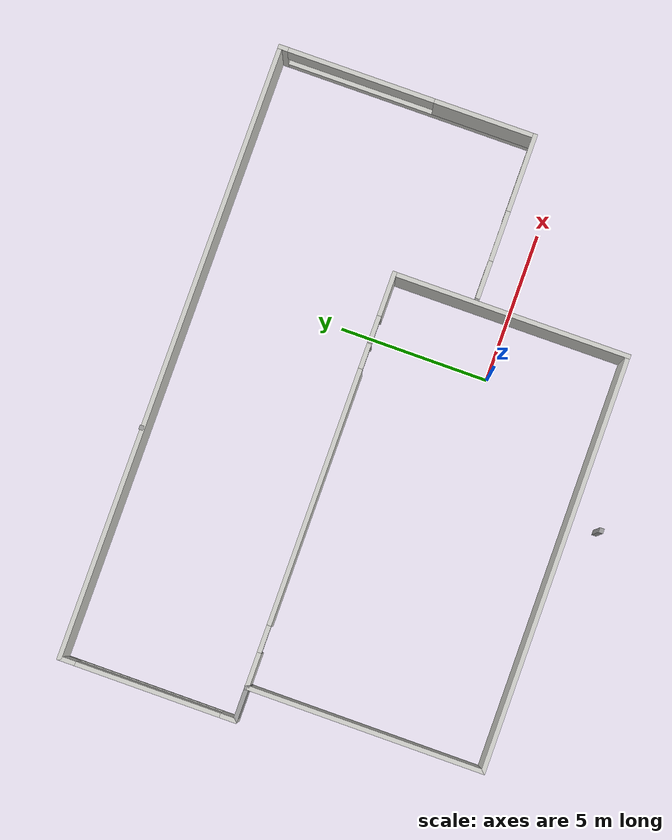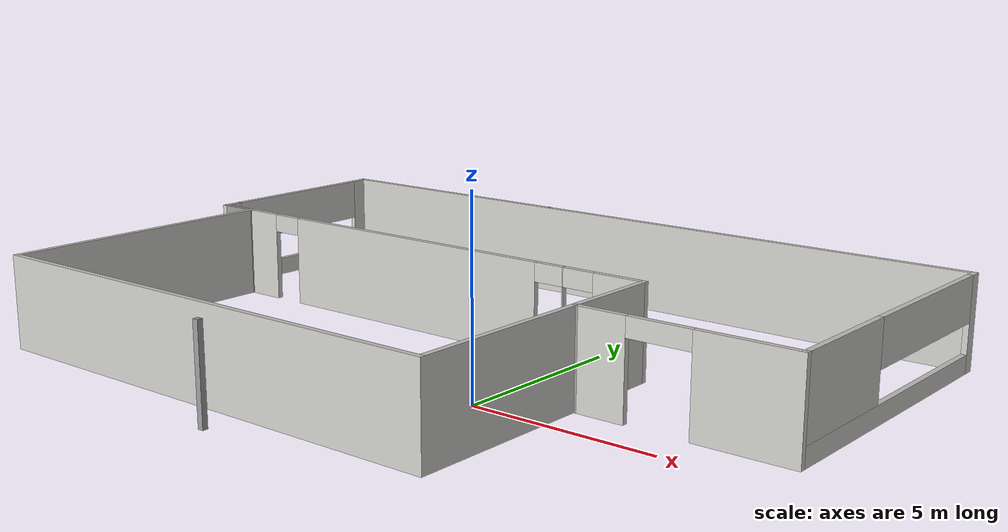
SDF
<?xml version='1.0'?>
<sdf version='1.7'>
  <model name='ZHAW_TB_UG1'>
    <pose>-2.6681 2.44183 0 0 -0 0</pose>
    <link name='Wall_11'>
      <pose>-2.275 1.49005 0 0 -0 0</pose>
      <visual name='Wall_11_Visual_0'>
        <pose>-6.38525 0 1.25 0 -0 0</pose>
        <geometry>
          <box>
            <size>1.2295 0.15 2.5</size>
          </box>
        </geometry>
        <material>
          <script>
            <uri>file://media/materials/scripts/gazebo.material</uri>
            <name>Gazebo/CeilingTiled</name>
          </script>
          <ambient>1 1 1 1</ambient>
        </material>
        <meta>
          <layer>0</layer>
        </meta>
      </visual>
      <collision name='Wall_11_Collision_0'>
        <geometry>
          <box>
            <size>1.2295 0.15 2.5</size>
          </box>
        </geometry>
        <pose>-6.38525 0 1.25 0 -0 0</pose>
      </collision>
      <visual name='Wall_11_Visual_1'>
        <pose>-0.575502 0 1.25 0 -0 0</pose>
        <geometry>
          <box>
            <size>8.59 0.15 2.5</size>
          </box>
        </geometry>
        <material>
          <script>
            <uri>file://media/materials/scripts/gazebo.material</uri>
            <name>Gazebo/CeilingTiled</name>
          </script>
          <ambient>1 1 1 1</ambient>
        </material>
        <meta>
          <layer>0</layer>
        </meta>
      </visual>
      <collision name='Wall_11_Collision_1'>
        <geometry>
          <box>
            <size>8.59 0.15 2.5</size>
          </box>
        </geometry>
        <pose>-0.575502 0 1.25 0 -0 0</pose>
      </collision>
      <visual name='Wall_11_Visual_2'>
        <pose>4.5845 0 1.25 0 -0 0</pose>
        <geometry>
          <box>
            <size>0.03 0.15 2.5</size>
          </box>
        </geometry>
        <material>
          <script>
            <uri>file://media/materials/scripts/gazebo.material</uri>
            <name>Gazebo/CeilingTiled</name>
          </script>
          <ambient>1 1 1 1</ambient>
        </material>
        <meta>
          <layer>0</layer>
        </meta>
      </visual>
      <collision name='Wall_11_Collision_2'>
        <geometry>
          <box>
            <size>0.03 0.15 2.5</size>
          </box>
        </geometry>
        <pose>4.5845 0 1.25 0 -0 0</pose>
      </collision>
      <visual name='Wall_11_Visual_3'>
        <pose>6.24975 0 1.25 0 -0 0</pose>
        <geometry>
          <box>
            <size>1.5005 0.15 2.5</size>
          </box>
        </geometry>
        <material>
          <script>
            <uri>file://media/materials/scripts/gazebo.material</uri>
            <name>Gazebo/CeilingTiled</name>
          </script>
          <ambient>1 1 1 1</ambient>
        </material>
        <meta>
          <layer>0</layer>
        </meta>
      </visual>
      <collision name='Wall_11_Collision_3'>
        <geometry>
          <box>
            <size>1.5005 0.15 2.5</size>
          </box>
        </geometry>
        <pose>6.24975 0 1.25 0 -0 0</pose>
      </collision>
      <visual name='Wall_11_Visual_4'>
        <pose>-5.3205 0 2.25 0 -0 0</pose>
        <geometry>
          <box>
            <size>0.9 0.15 0.5</size>
          </box>
        </geometry>
        <material>
          <script>
            <uri>file://media/materials/scripts/gazebo.material</uri>
            <name>Gazebo/CeilingTiled</name>
          </script>
          <ambient>1 1 1 1</ambient>
        </material>
        <meta>
          <layer>0</layer>
        </meta>
      </visual>
      <collision name='Wall_11_Collision_4'>
        <geometry>
          <box>
            <size>0.9 0.15 0.5</size>
          </box>
        </geometry>
        <pose>-5.3205 0 2.25 0 -0 0</pose>
      </collision>
      <visual name='Wall_11_Visual_5'>
        <pose>4.1445 0 2.25 0 -0 0</pose>
        <geometry>
          <box>
            <size>0.85 0.15 0.5</size>
          </box>
        </geometry>
        <material>
          <script>
            <uri>file://media/materials/scripts/gazebo.material</uri>
            <name>Gazebo/CeilingTiled</name>
          </script>
          <ambient>1 1 1 1</ambient>
        </material>
        <meta>
          <layer>0</layer>
        </meta>
      </visual>
      <collision name='Wall_11_Collision_5'>
        <geometry>
          <box>
            <size>0.85 0.15 0.5</size>
          </box>
        </geometry>
        <pose>4.1445 0 2.25 0 -0 0</pose>
      </collision>
      <visual name='Wall_11_Visual_6'>
        <pose>5.0495 0 2.25 0 -0 0</pose>
        <geometry>
          <box>
            <size>0.9 0.15 0.5</size>
          </box>
        </geometry>
        <material>
          <script>
            <uri>file://media/materials/scripts/gazebo.material</uri>
            <name>Gazebo/CeilingTiled</name>
          </script>
          <ambient>1 1 1 1</ambient>
        </material>
        <meta>
          <layer>0</layer>
        </meta>
      </visual>
      <collision name='Wall_11_Collision_6'>
        <geometry>
          <box>
            <size>0.9 0.15 0.5</size>
          </box>
        </geometry>
        <pose>5.0495 0 2.25 0 -0 0</pose>
      </collision>
    </link>
    <link name='Wall_13'>
      <collision name='Wall_13_Collision'>
        <geometry>
          <box>
            <size>0.194772 0.15 2.5</size>
          </box>
        </geometry>
        <pose>0 0 1.25 0 -0 0</pose>
      </collision>
      <visual name='Wall_13_Visual'>
        <pose>0 0 1.25 0 -0 0</pose>
        <geometry>
          <box>
            <size>0.194772 0.15 2.5</size>
          </box>
        </geometry>
        <material>
          <script>
            <uri>file://media/materials/scripts/gazebo.material</uri>
            <name>Gazebo/Grey</name>
          </script>
          <ambient>1 1 1 1</ambient>
        </material>
        <meta>
          <layer>0</layer>
        </meta>
      </visual>
      <pose>-9.1958 1.46806 0 0 -0 -1.38206</pose>
    </link>
    <link name='Wall_17'>
      <collision name='Wall_17_Collision'>
        <geometry>
          <box>
            <size>1.25 0.15 2.5</size>
          </box>
        </geometry>
        <pose>0 0 1.25 0 -0 0</pose>
      </collision>
      <visual name='Wall_17_Visual'>
        <pose>0 0 1.25 0 -0 0</pose>
        <geometry>
          <box>
            <size>1.25 0.15 2.5</size>
          </box>
        </geometry>
        <material>
          <script>
            <uri>file://media/materials/scripts/gazebo.material</uri>
            <name>Gazebo/Grey</name>
          </script>
          <ambient>1 1 1 1</ambient>
        </material>
        <meta>
          <layer>0</layer>
        </meta>
      </visual>
      <pose>-9.75 1.49005 0 0 -0 3.14159</pose>
    </link>
    <link name='Wall_18'>
      <pose>-10.3 4.41505 0 0 -0 1.5708</pose>
      <visual name='Wall_18_Visual_0'>
        <pose>-2.70968 0 1.25 0 -0 0</pose>
        <geometry>
          <box>
            <size>0.580639 0.15 2.5</size>
          </box>
        </geometry>
        <material>
          <script>
            <uri>file://media/materials/scripts/gazebo.material</uri>
            <name>Gazebo/CeilingTiled</name>
          </script>
          <ambient>1 1 1 1</ambient>
        </material>
        <meta>
          <layer>0</layer>
        </meta>
      </visual>
      <collision name='Wall_18_Collision_0'>
        <geometry>
          <box>
            <size>0.580639 0.15 2.5</size>
          </box>
        </geometry>
        <pose>-2.70968 0 1.25 0 -0 0</pose>
      </collision>
      <visual name='Wall_18_Visual_1'>
        <pose>0.290319 0 0.25 0 -0 0</pose>
        <geometry>
          <box>
            <size>5.41936 0.15 0.5</size>
          </box>
        </geometry>
        <material>
          <script>
            <uri>file://media/materials/scripts/gazebo.material</uri>
            <name>Gazebo/CeilingTiled</name>
          </script>
          <ambient>1 1 1 1</ambient>
        </material>
        <meta>
          <layer>0</layer>
        </meta>
      </visual>
      <collision name='Wall_18_Collision_1'>
        <geometry>
          <box>
            <size>5.41936 0.15 0.5</size>
          </box>
        </geometry>
        <pose>0.290319 0 0.25 0 -0 0</pose>
      </collision>
      <visual name='Wall_18_Visual_2'>
        <pose>2.70268 0 1.5 0 -0 0</pose>
        <geometry>
          <box>
            <size>0.594636 0.15 2</size>
          </box>
        </geometry>
        <material>
          <script>
            <uri>file://media/materials/scripts/gazebo.material</uri>
            <name>Gazebo/CeilingTiled</name>
          </script>
          <ambient>1 1 1 1</ambient>
        </material>
        <meta>
          <layer>0</layer>
        </meta>
      </visual>
      <collision name='Wall_18_Collision_2'>
        <geometry>
          <box>
            <size>0.594636 0.15 2</size>
          </box>
        </geometry>
        <pose>2.70268 0 1.5 0 -0 0</pose>
      </collision>
      <visual name='Wall_18_Visual_3'>
        <pose>-0.006999 0 1.9 0 -0 0</pose>
        <geometry>
          <box>
            <size>4.82473 0.15 1.2</size>
          </box>
        </geometry>
        <material>
          <script>
            <uri>file://media/materials/scripts/gazebo.material</uri>
            <name>Gazebo/CeilingTiled</name>
          </script>
          <ambient>1 1 1 1</ambient>
        </material>
        <meta>
          <layer>0</layer>
        </meta>
      </visual>
      <collision name='Wall_18_Collision_3'>
        <geometry>
          <box>
            <size>4.82473 0.15 1.2</size>
          </box>
        </geometry>
        <pose>-0.006999 0 1.9 0 -0 0</pose>
      </collision>
    </link>
    <link name='Wall_2'>
      <collision name='Wall_2_Collision'>
        <geometry>
          <box>
            <size>0.16 0.15 2.5</size>
          </box>
        </geometry>
        <pose>0 0 1.25 0 -0 0</pose>
      </collision>
      <visual name='Wall_2_Visual'>
        <pose>0 0 1.25 0 -0 0</pose>
        <geometry>
          <box>
            <size>0.16 0.15 2.5</size>
          </box>
        </geometry>
        <material>
          <script>
            <uri>file://media/materials/scripts/gazebo.material</uri>
            <name>Gazebo/Grey</name>
          </script>
          <ambient>0 0 0 1</ambient>
        </material>
        <meta>
          <layer>0</layer>
        </meta>
      </visual>
      <pose>-0.839865 -7.37085 0 0 -0 0</pose>
    </link>
    <link name='Wall_25'>
      <collision name='Wall_25_Collision'>
        <geometry>
          <box>
            <size>0.15 0.15 2.5</size>
          </box>
        </geometry>
        <pose>0 0 1.25 0 -0 0</pose>
      </collision>
      <visual name='Wall_25_Visual'>
        <pose>0 0 1.25 0 -0 0</pose>
        <geometry>
          <box>
            <size>0.15 0.15 2.5</size>
          </box>
        </geometry>
        <material>
          <script>
            <uri>file://media/materials/scripts/gazebo.material</uri>
            <name>Gazebo/Grey</name>
          </script>
          <ambient>1 1 1 1</ambient>
        </material>
        <meta>
          <layer>0</layer>
        </meta>
      </visual>
      <pose>-2.62777 7.37085 0 0 -0 0</pose>
    </link>
    <link name='Wall_27'>
      <collision name='Wall_27_Collision'>
        <geometry>
          <box>
            <size>20.75 0.15 2.5</size>
          </box>
        </geometry>
        <pose>0 0 1.25 0 -0 0</pose>
      </collision>
      <visual name='Wall_27_Visual'>
        <pose>0 0 1.25 0 -0 0</pose>
        <geometry>
          <box>
            <size>20.75 0.15 2.5</size>
          </box>
        </geometry>
        <material>
          <script>
            <uri>file://media/materials/scripts/gazebo.material</uri>
            <name>Gazebo/CeilingTiled</name>
          </script>
          <ambient>1 1 1 1</ambient>
        </material>
        <meta>
          <layer>0</layer>
        </meta>
      </visual>
      <pose>0 7.34004 0 0 -0 0</pose>
    </link>
    <link name='Wall_28'>
      <pose>10.3 3.04005 0 0 -0 -1.5708</pose>
      <visual name='Wall_28_Visual_0'>
        <pose>-4.2049 0 1.25 0 -0 0</pose>
        <geometry>
          <box>
            <size>0.340199 0.15 2.5</size>
          </box>
        </geometry>
        <material>
          <script>
            <uri>file://media/materials/scripts/gazebo.material</uri>
            <name>Gazebo/CeilingTiled</name>
          </script>
          <ambient>1 1 1 1</ambient>
        </material>
        <meta>
          <layer>0</layer>
        </meta>
      </visual>
      <collision name='Wall_28_Collision_0'>
        <geometry>
          <box>
            <size>0.340199 0.15 2.5</size>
          </box>
        </geometry>
        <pose>-4.2049 0 1.25 0 -0 0</pose>
      </collision>
      <visual name='Wall_28_Visual_1'>
        <pose>0.1701 0 0.25 0 -0 0</pose>
        <geometry>
          <box>
            <size>8.4098 0.15 0.5</size>
          </box>
        </geometry>
        <material>
          <script>
            <uri>file://media/materials/scripts/gazebo.material</uri>
            <name>Gazebo/CeilingTiled</name>
          </script>
          <ambient>1 1 1 1</ambient>
        </material>
        <meta>
          <layer>0</layer>
        </meta>
      </visual>
      <collision name='Wall_28_Collision_1'>
        <geometry>
          <box>
            <size>8.4098 0.15 0.5</size>
          </box>
        </geometry>
        <pose>0.1701 0 0.25 0 -0 0</pose>
      </collision>
      <visual name='Wall_28_Visual_2'>
        <pose>2.64029 0 1.5 0 -0 0</pose>
        <geometry>
          <box>
            <size>3.46942 0.15 2</size>
          </box>
        </geometry>
        <material>
          <script>
            <uri>file://media/materials/scripts/gazebo.material</uri>
            <name>Gazebo/CeilingTiled</name>
          </script>
          <ambient>1 1 1 1</ambient>
        </material>
        <meta>
          <layer>0</layer>
        </meta>
      </visual>
      <collision name='Wall_28_Collision_2'>
        <geometry>
          <box>
            <size>3.46942 0.15 2</size>
          </box>
        </geometry>
        <pose>2.64029 0 1.5 0 -0 0</pose>
      </collision>
      <visual name='Wall_28_Visual_3'>
        <pose>-1.56461 0 1.9 0 -0 0</pose>
        <geometry>
          <box>
            <size>4.94038 0.15 1.2</size>
          </box>
        </geometry>
        <material>
          <script>
            <uri>file://media/materials/scripts/gazebo.material</uri>
            <name>Gazebo/CeilingTiled</name>
          </script>
          <ambient>1 1 1 1</ambient>
        </material>
        <meta>
          <layer>0</layer>
        </meta>
      </visual>
      <collision name='Wall_28_Collision_3'>
        <geometry>
          <box>
            <size>4.94038 0.15 1.2</size>
          </box>
        </geometry>
        <pose>-1.56461 0 1.9 0 -0 0</pose>
      </collision>
    </link>
    <link name='Wall_29'>
      <pose>7.5 -1.25995 0 0 -0 3.14159</pose>
      <visual name='Wall_29_Visual_0'>
        <pose>-1.55862 0 1.25 0 -0 0</pose>
        <geometry>
          <box>
            <size>2.63276 0.15 2.5</size>
          </box>
        </geometry>
        <material>
          <script>
            <uri>file://media/materials/scripts/gazebo.material</uri>
            <name>Gazebo/CeilingTiled</name>
          </script>
          <ambient>1 1 1 1</ambient>
        </material>
        <meta>
          <layer>0</layer>
        </meta>
      </visual>
      <collision name='Wall_29_Collision_0'>
        <geometry>
          <box>
            <size>2.63276 0.15 2.5</size>
          </box>
        </geometry>
        <pose>-1.55862 0 1.25 0 -0 0</pose>
      </collision>
      <visual name='Wall_29_Visual_1'>
        <pose>2.1596 0 1.25 0 -0 0</pose>
        <geometry>
          <box>
            <size>1.4308 0.15 2.5</size>
          </box>
        </geometry>
        <material>
          <script>
            <uri>file://media/materials/scripts/gazebo.material</uri>
            <name>Gazebo/CeilingTiled</name>
          </script>
          <ambient>1 1 1 1</ambient>
        </material>
        <meta>
          <layer>0</layer>
        </meta>
      </visual>
      <collision name='Wall_29_Collision_1'>
        <geometry>
          <box>
            <size>1.4308 0.15 2.5</size>
          </box>
        </geometry>
        <pose>2.1596 0 1.25 0 -0 0</pose>
      </collision>
      <visual name='Wall_29_Visual_2'>
        <pose>0.600981 0 2.25 0 -0 0</pose>
        <geometry>
          <box>
            <size>1.68644 0.15 0.5</size>
          </box>
        </geometry>
        <material>
          <script>
            <uri>file://media/materials/scripts/gazebo.material</uri>
            <name>Gazebo/CeilingTiled</name>
          </script>
          <ambient>1 1 1 1</ambient>
        </material>
        <meta>
          <layer>0</layer>
        </meta>
      </visual>
      <collision name='Wall_29_Collision_2'>
        <geometry>
          <box>
            <size>1.68644 0.15 0.5</size>
          </box>
        </geometry>
        <pose>0.600981 0 2.25 0 -0 0</pose>
      </collision>
    </link>
    <link name='Wall_30'>
      <collision name='Wall_30_Collision'>
        <geometry>
          <box>
            <size>0.16 0.15 2.5</size>
          </box>
        </geometry>
        <pose>0 0 1.25 0 -0 0</pose>
      </collision>
      <visual name='Wall_30_Visual'>
        <pose>0 0 1.25 0 -0 0</pose>
        <geometry>
          <box>
            <size>0.16 0.15 2.5</size>
          </box>
        </geometry>
        <material>
          <script>
            <uri>file://media/materials/scripts/gazebo.material</uri>
            <name>Gazebo/Grey</name>
          </script>
          <ambient>1 1 1 1</ambient>
        </material>
        <meta>
          <layer>0</layer>
        </meta>
      </visual>
      <pose>4.705 -1.25995 0 0 -0 0</pose>
    </link>
    <link name='Wall_4'>
      <collision name='Wall_4_Collision'>
        <geometry>
          <box>
            <size>8 0.15 2.5</size>
          </box>
        </geometry>
        <pose>0 0 1.25 0 -0 0</pose>
      </collision>
      <visual name='Wall_4_Visual'>
        <pose>0 0 1.25 0 -0 0</pose>
        <geometry>
          <box>
            <size>8 0.15 2.5</size>
          </box>
        </geometry>
        <material>
          <script>
            <uri>file://media/materials/scripts/gazebo.material</uri>
            <name>Gazebo/CeilingTiled</name>
          </script>
          <ambient>1 1 1 1</ambient>
        </material>
        <meta>
          <layer>0</layer>
        </meta>
      </visual>
      <pose>-9.2 -2.43495 0 0 -0 -1.5708</pose>
    </link>
    <link name='Wall_5'>
      <collision name='Wall_5_Collision'>
        <geometry>
          <box>
            <size>14 0.15 2.5</size>
          </box>
        </geometry>
        <pose>0 0 1.25 0 -0 0</pose>
      </collision>
      <visual name='Wall_5_Visual'>
        <pose>0 0 1.25 0 -0 0</pose>
        <geometry>
          <box>
            <size>14 0.15 2.5</size>
          </box>
        </geometry>
        <material>
          <script>
            <uri>file://media/materials/scripts/gazebo.material</uri>
            <name>Gazebo/CeilingTiled</name>
          </script>
          <ambient>1 1 1 1</ambient>
        </material>
        <meta>
          <layer>0</layer>
        </meta>
      </visual>
      <pose>-2.275 -6.35996 0 0 -0 0</pose>
    </link>
    <link name='Wall_6'>
      <collision name='Wall_6_Collision'>
        <geometry>
          <box>
            <size>8 0.15 2.5</size>
          </box>
        </geometry>
        <pose>0 0 1.25 0 -0 0</pose>
      </collision>
      <visual name='Wall_6_Visual'>
        <pose>0 0 1.25 0 -0 0</pose>
        <geometry>
          <box>
            <size>8 0.15 2.5</size>
          </box>
        </geometry>
        <material>
          <script>
            <uri>file://media/materials/scripts/gazebo.material</uri>
            <name>Gazebo/CeilingTiled</name>
          </script>
          <ambient>1 1 1 1</ambient>
        </material>
        <meta>
          <layer>0</layer>
        </meta>
      </visual>
      <pose>4.65 -2.43495 0 0 -0 1.5708</pose>
    </link>
    <static>1</static>
  </model>
</sdf>
